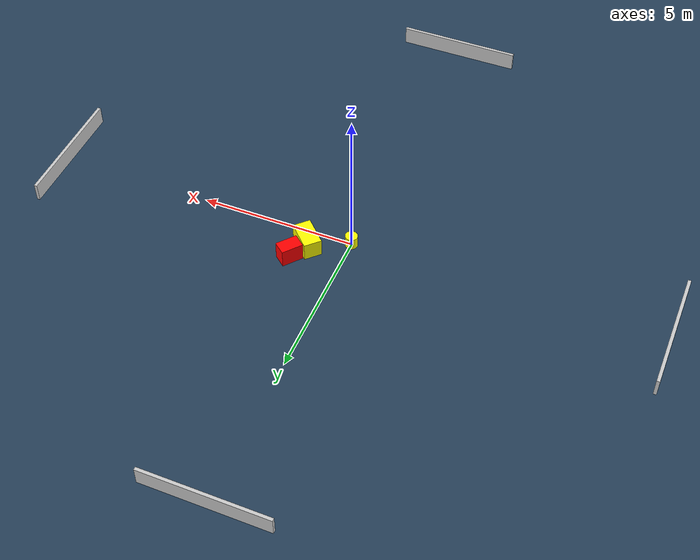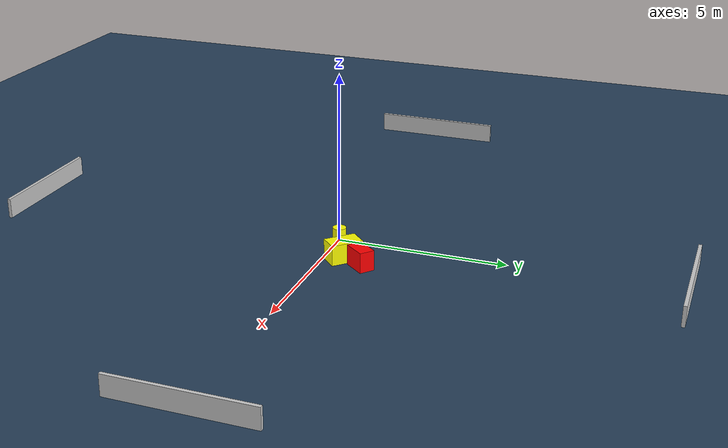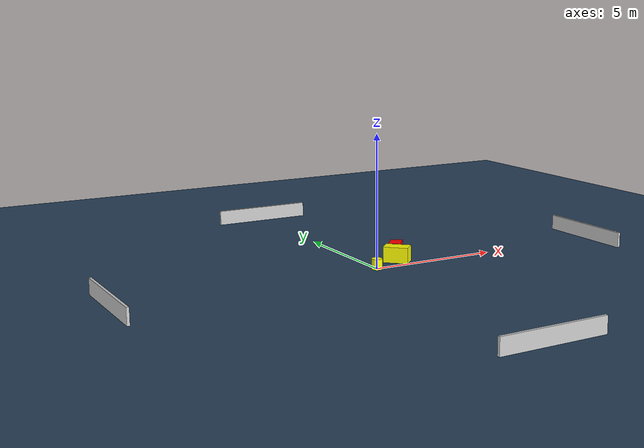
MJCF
<?xml version="1.0" ?>
<mujoco model="generated_environment">
  <option timestep="0.01" integrator="RK4" cone="elliptic"/>
  <default>
    <geom density="1"/>
  </default>
  <asset>
    <texture builtin="gradient" height="3072" name="skybox" rgb1="0.3 0.5 0.7" rgb2="0 0 0" type="skybox" width="512"/>
    <texture builtin="checker" height="300" name="groundplane" rgb1="0.2 0.3 0.4" rgb2="0.1 0.2 0.3" type="2d" width="300"/>
    <material name="groundplane" reflectance="0.2" texrepeat="5 5" texture="groundplane"/>
  </asset>
  <worldbody>
    <light dir="0 0 -1" directional="true" pos="0 0 1.5"/>
    <geom condim="3" friction="0.5 0.005 0.001" material="groundplane" name="floor" pos="0 0 0" size="0 0 0.05" type="plane"/>
    <body name="walls">
      <geom name="wall_1" condim="4" pos="-10.0 0.0 0.3" rgba="0.800000011920929 0.800000011920929 0.800000011920929 1.0" size="0.05 2.0 0.3" type="box"/>
      <geom name="wall_2" condim="4" pos="10.0 0.0 0.3" rgba="0.800000011920929 0.800000011920929 0.800000011920929 1.0" size="0.05 2.0 0.3" type="box"/>
      <geom name="wall_3" condim="4" pos="0.0 -10.0 0.3" rgba="0.800000011920929 0.800000011920929 0.800000011920929 1.0" size="2.0 0.05 0.3" type="box"/>
      <geom name="wall_4" condim="4" pos="0.0 10.0 0.3" rgba="0.800000011920929 0.800000011920929 0.800000011920929 1.0" size="2.0 0.05 0.3" type="box"/>
    </body>
    <body name="robot">
      <joint name="joint_x" type="slide" pos="0 0 0" axis="1 0 0"/>
      <joint name="joint_y" type="slide" pos="0 0 0" axis="0 1 0"/>
      <geom name="robot" type="cylinder" pos="0.0 0.0 0.2" size="0.2 0.2 0.0" mass="5.0" friction="1.0 0.005 0.0001" condim="4" rgba="1.0 1.0 0.0 1.0"/>
    </body>
    <body name="obstacle_1_movable">
      <geom name="obstacle_1_movable" condim="4" pos="1.2290171218286743 0.5813215720231333 0.3" euler="0 0 225.23307371335798" friction="0.0 0.005 0.001" rgba="1.0 1.0 0.0 1.0" size="0.2843818592598442 0.4741367712744336 0.3" type="box" mass="0.1"/>
      <joint type="free"/>
    </body>
    <body name="obstacle_2_static">
      <geom name="obstacle_2_static" condim="4" pos="1.545951906606541 1.2122068348342405 0.3" euler="0 0 50.662217018019035" friction="0.0 0.005 0.001" rgba="1.0 0.0 0.0 1.0" size="0.34939728432016603 0.22323823595587367 0.3" type="box"/>
    </body>
  </worldbody>
  <actuator>
    <motor name="actuator_x" joint="joint_x" gear="1" ctrlrange="-1 1"/>
    <motor name="actuator_y" joint="joint_y" gear="1" ctrlrange="-1 1"/>
  </actuator>
</mujoco>
